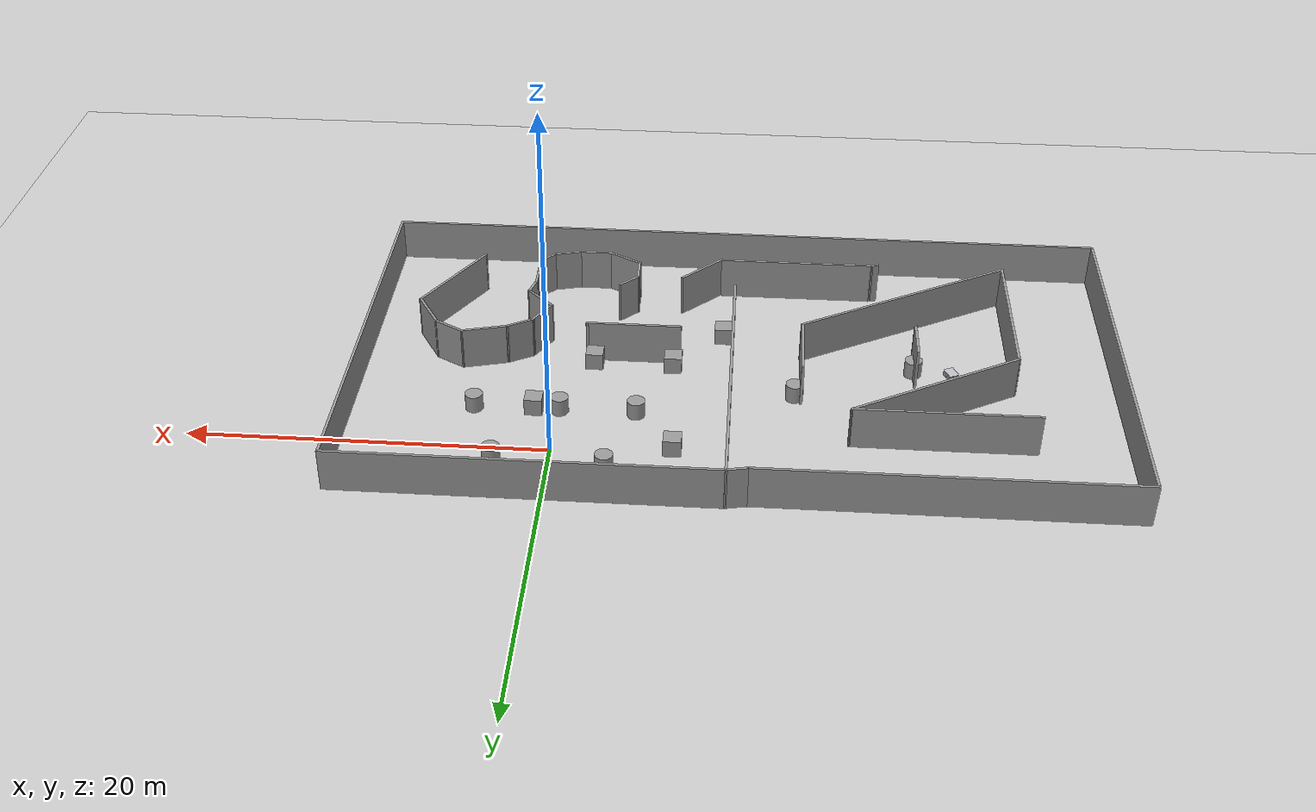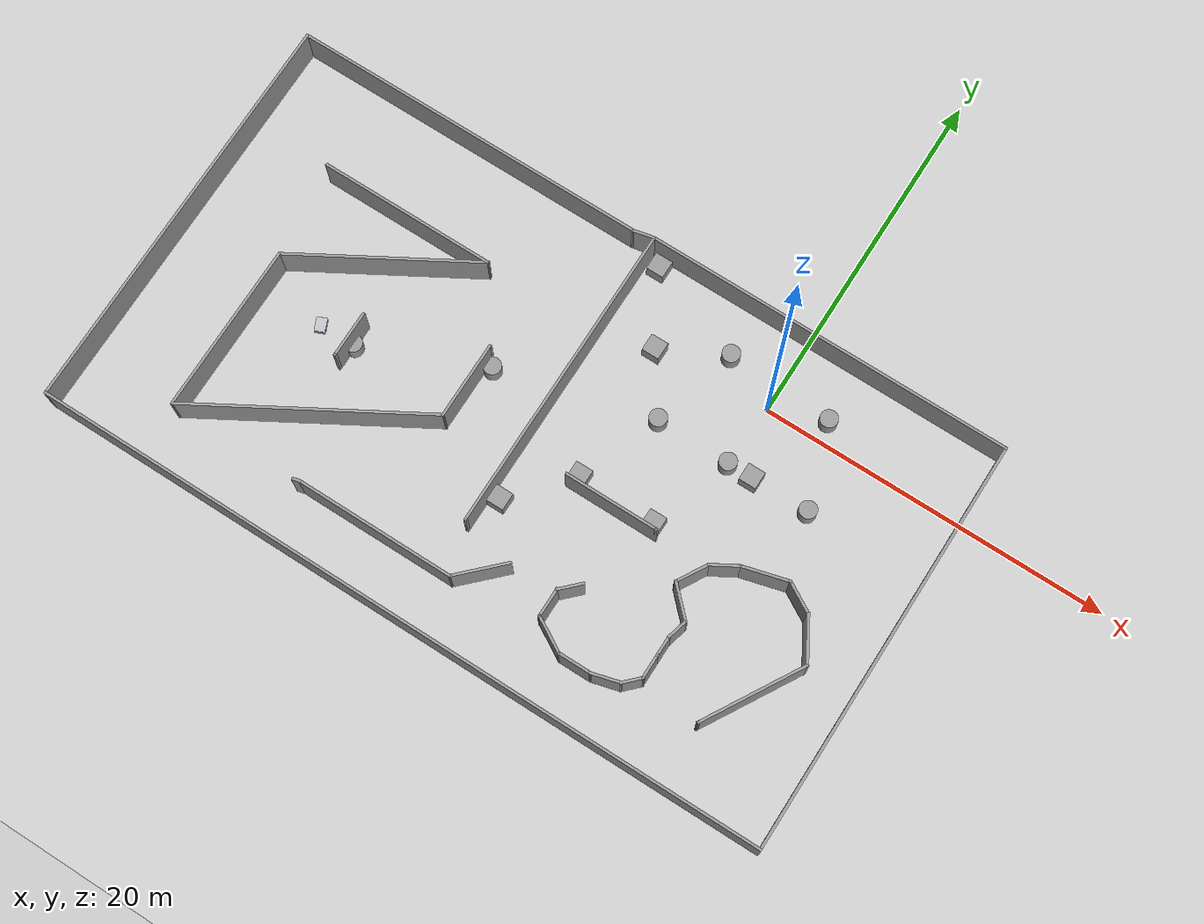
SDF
<sdf version="1.7">
 <world name="default">
  <light name="sun" type="directional">
   <pose>0 0 10 0 -0 0</pose>
   <diffuse>0.8 0.8 0.8 1</diffuse>
   <specular>0.2 0.2 0.2 1</specular>
   <attenuation>
    <range>1000</range>
    <constant>0.9</constant>
    <linear>0.01</linear>
    <quadratic>0.001</quadratic>
   </attenuation>
   <direction>-0.5 0.1 -0.9</direction>
   <spot><inner_angle>0</inner_angle><outer_angle>0</outer_angle><falloff>0</falloff></spot>
  </light>
  <model name="ground_plane">
   <static>1</static>
   <link name="link">
    <collision name="collision">
     <geometry><plane><normal>0 0 1</normal><size>100 100</size></plane></geometry>
     <surface><friction><ode><mu>100</mu><mu2>50</mu2></ode></friction></surface>
    </collision>
    <visual name="visual">
     <cast_shadows>0</cast_shadows>
     <geometry><plane><normal>0 0 1</normal><size>100 100</size></plane></geometry>
     <material>
      <script><uri>file://media/materials/scripts/gazebo.material</uri><name>Gazebo/Grey</name></script>
     </material>
    </visual>
   </link>
  </model>
  <gravity>0 0 -9.8</gravity>
  <magnetic_field>6e-06 2.3e-05 -4.2e-05</magnetic_field>
  <atmosphere type="adiabatic"/>
  <physics type="ode">
   <max_step_size>0.001</max_step_size>
   <real_time_factor>1</real_time_factor>
   <real_time_update_rate>1000</real_time_update_rate>
  </physics>
  <scene><ambient>0.4 0.4 0.4 1</ambient><background>0.7 0.7 0.7 1</background><shadows>1</shadows></scene>
  <audio><device>default</device></audio>
  <spherical_coordinates>
   <surface_model>EARTH_WGS84</surface_model>
   <latitude_deg>0</latitude_deg>
   <longitude_deg>0</longitude_deg>
   <elevation>0</elevation>
   <heading_deg>0</heading_deg>
  </spherical_coordinates>
  <light name="user_directional_light_0" type="directional">
   <pose>2.19345 2.7816 1 0 -0 0</pose>
   <diffuse>0.5 0.5 0.5 1</diffuse>
   <specular>0.1 0.1 0.1 1</specular>
   <direction>0.1 0.1 -0.9</direction>
   <attenuation>
    <range>20</range>
    <constant>0.5</constant>
    <linear>0.01</linear>
    <quadratic>0.001</quadratic>
   </attenuation>
   <spot><inner_angle>0</inner_angle><outer_angle>0</outer_angle><falloff>0</falloff></spot>
  </light>
  <light name="user_point_light_0" type="point">
   <pose>0.00602 0.042738 1 0 -0 0</pose>
   <diffuse>0.5 0.5 0.5 1</diffuse>
   <specular>0.1 0.1 0.1 1</specular>
   <attenuation>
    <range>20</range>
    <constant>0.5</constant>
    <linear>0.01</linear>
    <quadratic>0.001</quadratic>
   </attenuation>
   <cast_shadows>0</cast_shadows>
   <direction>0 0 -1</direction>
   <spot><inner_angle>0</inner_angle><outer_angle>0</outer_angle><falloff>0</falloff></spot>
  </light>
  <light name="user_directional_light_1" type="directional">
   <pose>8.20427 3.3882 1 0 -0 0</pose>
   <diffuse>0.5 0.5 0.5 1</diffuse>
   <specular>0.1 0.1 0.1 1</specular>
   <direction>0.1 0.1 -0.9</direction>
   <attenuation>
    <range>20</range>
    <constant>0.5</constant>
    <linear>0.01</linear>
    <quadratic>0.001</quadratic>
   </attenuation>
   <spot><inner_angle>0</inner_angle><outer_angle>0</outer_angle><falloff>0</falloff></spot>
  </light>
  <light name="user_directional_light_2" type="directional">
   <pose>-4.44235 2.83674 1 0 -0 0</pose>
   <diffuse>0.5 0.5 0.5 1</diffuse>
   <specular>0.1 0.1 0.1 1</specular>
   <direction>0.1 0.1 -0.9</direction>
   <attenuation>
    <range>20</range>
    <constant>0.5</constant>
    <linear>0.01</linear>
    <quadratic>0.001</quadratic>
   </attenuation>
   <spot><inner_angle>0</inner_angle><outer_angle>0</outer_angle><falloff>0</falloff></spot>
  </light>
  <light name="user_directional_light_3" type="directional">
   <pose>2.24863 -3.56007 1 0 -0 0</pose>
   <diffuse>0.5 0.5 0.5 1</diffuse>
   <specular>0.1 0.1 0.1 1</specular>
   <direction>0.1 0.1 -0.9</direction>
   <attenuation>
    <range>20</range>
    <constant>0.5</constant>
    <linear>0.01</linear>
    <quadratic>0.001</quadratic>
   </attenuation>
   <spot><inner_angle>0</inner_angle><outer_angle>0</outer_angle><falloff>0</falloff></spot>
  </light>
  <light name="user_directional_light_4" type="directional">
   <pose>2.43241 9.1233 1 0 -0 0</pose>
   <diffuse>0.5 0.5 0.5 1</diffuse>
   <specular>0.1 0.1 0.1 1</specular>
   <direction>0.1 0.1 -0.9</direction>
   <attenuation>
    <range>20</range>
    <constant>0.5</constant>
    <linear>0.01</linear>
    <quadratic>0.001</quadratic>
   </attenuation>
   <spot><inner_angle>0</inner_angle><outer_angle>0</outer_angle><falloff>0</falloff></spot>
  </light>
  <model name="Untitled">
   <pose>-9.90594 -7.76724 0 0 -0 0</pose>
   <link name="Wall_1">
    <collision name="Wall_1_Collision">
     <geometry><box><size>21.25 0.15 2.5</size></box></geometry>
     <pose>0 0 1.25 0 -0 0</pose>
    </collision>
    <visual name="Wall_1_Visual">
     <pose>0 0 1.25 0 -0 0</pose>
     <geometry><box><size>21.25 0.15 2.5</size></box></geometry>
     <material>
      <script><uri>file://media/materials/scripts/gazebo.material</uri><name>Gazebo/Grey</name></script>
      <ambient>1 1 1 1</ambient>
     </material>
     <meta><layer>0</layer></meta>
    </visual>
    <pose>10.875 11.9179 0 0 -0 0</pose>
   </link>
   <link name="Wall_11">
    <collision name="Wall_11_Collision">
     <geometry><box><size>10.25 0.15 2.5</size></box></geometry>
     <pose>0 0 1.25 0 -0 0</pose>
    </collision>
    <visual name="Wall_11_Visual">
     <pose>0 0 1.25 0 -0 0</pose>
     <geometry><box><size>10.25 0.15 2.5</size></box></geometry>
     <material>
      <script><uri>file://media/materials/scripts/gazebo.material</uri><name>Gazebo/Grey</name></script>
      <ambient>1 1 1 1</ambient>
     </material>
     <meta><layer>0</layer></meta>
    </visual>
    <pose>-11.3016 6.11885 0 0 -0 0</pose>
   </link>
   <link name="Wall_12">
    <collision name="Wall_12_Collision">
     <geometry><box><size>11 0.15 2.5</size></box></geometry>
     <pose>0 0 1.25 0 -0 0</pose>
    </collision>
    <visual name="Wall_12_Visual">
     <pose>0 0 1.25 0 -0 0</pose>
     <geometry><box><size>11 0.15 2.5</size></box></geometry>
     <material>
      <script><uri>file://media/materials/scripts/gazebo.material</uri><name>Gazebo/Grey</name></script>
      <ambient>1 1 1 1</ambient>
     </material>
     <meta><layer>0</layer></meta>
    </visual>
    <pose>-10.9498 3.40634 0 0 -0 -2.61799</pose>
   </link>
   <link name="Wall_13">
    <collision name="Wall_13_Collision">
     <geometry><box><size>9.75 0.15 2.5</size></box></geometry>
     <pose>0 0 1.25 0 -0 0</pose>
    </collision>
    <visual name="Wall_13_Visual">
     <pose>0 0 1.25 0 -0 0</pose>
     <geometry><box><size>9.75 0.15 2.5</size></box></geometry>
     <material>
      <script><uri>file://media/materials/scripts/gazebo.material</uri><name>Gazebo/Grey</name></script>
      <ambient>1 1 1 1</ambient>
     </material>
     <meta><layer>0</layer></meta>
    </visual>
    <pose>-15.6479 -4.10616 0 0 -0 -1.5708</pose>
   </link>
   <link name="Wall_14">
    <collision name="Wall_14_Collision">
     <geometry><box><size>14 0.15 2.5</size></box></geometry>
     <pose>0 0 1.25 0 -0 0</pose>
    </collision>
    <visual name="Wall_14_Visual">
     <pose>0 0 1.25 0 -0 0</pose>
     <geometry><box><size>14 0.15 2.5</size></box></geometry>
     <material>
      <script><uri>file://media/materials/scripts/gazebo.material</uri><name>Gazebo/Grey</name></script>
      <ambient>1 1 1 1</ambient>
     </material>
     <meta><layer>0</layer></meta>
    </visual>
    <pose>-9.65072 -5.44365 0 0 -0 0.523599</pose>
   </link>
   <link name="Wall_15">
    <collision name="Wall_15_Collision">
     <geometry><box><size>4.5 0.15 2.5</size></box></geometry>
     <pose>0 0 1.25 0 -0 0</pose>
    </collision>
    <visual name="Wall_15_Visual">
     <pose>0 0 1.25 0 -0 0</pose>
     <geometry><box><size>4.5 0.15 2.5</size></box></geometry>
     <material>
      <script><uri>file://media/materials/scripts/gazebo.material</uri><name>Gazebo/Grey</name></script>
      <ambient>1 1 1 1</ambient>
     </material>
     <meta><layer>0</layer></meta>
    </visual>
    <pose>-3.65349 0.193846 0 0 -0 1.5708</pose>
   </link>
   <link name="Wall_16">
    <collision name="Wall_16_Collision">
     <geometry><box><size>0.16 0.15 2.5</size></box></geometry>
     <pose>0 0 1.25 0 -0 0</pose>
    </collision>
    <visual name="Wall_16_Visual">
     <pose>0 0 1.25 0 -0 0</pose>
     <geometry><box><size>0.16 0.15 2.5</size></box></geometry>
     <material>
      <script><uri>file://media/materials/scripts/gazebo.material</uri><name>Gazebo/Grey</name></script>
      <ambient>1 1 1 1</ambient>
     </material>
     <meta><layer>0</layer></meta>
    </visual>
    <pose>-3.64849 2.36885 0 0 -0 0</pose>
   </link>
   <link name="Wall_18">
    <collision name="Wall_18_Collision">
     <geometry><box><size>2.75 0.15 2.5</size></box></geometry>
     <pose>0 0 1.25 0 -0 0</pose>
    </collision>
    <visual name="Wall_18_Visual">
     <pose>0 0 1.25 0 -0 0</pose>
     <geometry><box><size>2.75 0.15 2.5</size></box></geometry>
     <material>
      <script><uri>file://media/materials/scripts/gazebo.material</uri><name>Gazebo/Grey</name></script>
      <ambient>1 1 1 1</ambient>
     </material>
     <meta><layer>0</layer></meta>
    </visual>
    <pose>-10.11 -0.992237 0 0 -0 -1.5708</pose>
   </link>
   <link name="Wall_19">
    <collision name="Wall_19_Collision">
     <geometry><box><size>0.15 0.15 2.5</size></box></geometry>
     <pose>0 0 1.25 0 -0 0</pose>
    </collision>
    <visual name="Wall_19_Visual">
     <pose>0 0 1.25 0 -0 0</pose>
     <geometry><box><size>0.15 0.15 2.5</size></box></geometry>
     <material>
      <script><uri>file://media/materials/scripts/gazebo.material</uri><name>Gazebo/Grey</name></script>
      <ambient>1 1 1 1</ambient>
     </material>
     <meta><layer>0</layer></meta>
    </visual>
    <pose>-10.11 -2.29224 0 0 -0 0</pose>
   </link>
   <link name="Wall_2">
    <collision name="Wall_2_Collision">
     <geometry><box><size>24 0.15 2.5</size></box></geometry>
     <pose>0 0 1.25 0 -0 0</pose>
    </collision>
    <visual name="Wall_2_Visual">
     <pose>0 0 1.25 0 -0 0</pose>
     <geometry><box><size>24 0.15 2.5</size></box></geometry>
     <material>
      <script><uri>file://media/materials/scripts/gazebo.material</uri><name>Gazebo/Grey</name></script>
      <ambient>1 1 1 1</ambient>
     </material>
     <meta><layer>0</layer></meta>
    </visual>
    <pose>21.425 -0.007109 0 0 -0 -1.5708</pose>
   </link>
   <link name="Wall_21">
    <collision name="Wall_21_Collision">
     <geometry><box><size>1.5 0.15 2.5</size></box></geometry>
     <pose>0 0 1.25 0 -0 0</pose>
    </collision>
    <visual name="Wall_21_Visual">
     <pose>0 0 1.25 0 -0 0</pose>
     <geometry><box><size>1.5 0.15 2.5</size></box></geometry>
     <material>
      <script><uri>file://media/materials/scripts/gazebo.material</uri><name>Gazebo/Grey</name></script>
      <ambient>1 1 1 1</ambient>
     </material>
     <meta><layer>0</layer></meta>
    </visual>
    <pose>6.63069 -5.98062 0 0 -0 -2.35619</pose>
   </link>
   <link name="Wall_22">
    <collision name="Wall_22_Collision">
     <geometry><box><size>1.75 0.15 2.5</size></box></geometry>
     <pose>0 0 1.25 0 -0 0</pose>
    </collision>
    <visual name="Wall_22_Visual">
     <pose>0 0 1.25 0 -0 0</pose>
     <geometry><box><size>1.75 0.15 2.5</size></box></geometry>
     <material>
      <script><uri>file://media/materials/scripts/gazebo.material</uri><name>Gazebo/Grey</name></script>
      <ambient>1 1 1 1</ambient>
     </material>
     <meta><layer>0</layer></meta>
    </visual>
    <pose>6.15339 -7.25791 0 0 -0 -1.5708</pose>
   </link>
   <link name="Wall_23">
    <collision name="Wall_23_Collision">
     <geometry><box><size>2.25 0.15 2.5</size></box></geometry>
     <pose>0 0 1.25 0 -0 0</pose>
    </collision>
    <visual name="Wall_23_Visual">
     <pose>0 0 1.25 0 -0 0</pose>
     <geometry><box><size>2.25 0.15 2.5</size></box></geometry>
     <material>
      <script><uri>file://media/materials/scripts/gazebo.material</uri><name>Gazebo/Grey</name></script>
      <ambient>1 1 1 1</ambient>
     </material>
     <meta><layer>0</layer></meta>
    </visual>
    <pose>7.06272 -8.58291 0 0 -0 -0.523599</pose>
   </link>
   <link name="Wall_24">
    <collision name="Wall_24_Collision">
     <geometry><box><size>2 0.15 2.5</size></box></geometry>
     <pose>0 0 1.25 0 -0 0</pose>
    </collision>
    <visual name="Wall_24_Visual">
     <pose>0 0 1.25 0 -0 0</pose>
     <geometry><box><size>2 0.15 2.5</size></box></geometry>
     <material>
      <script><uri>file://media/materials/scripts/gazebo.material</uri><name>Gazebo/Grey</name></script>
      <ambient>1 1 1 1</ambient>
     </material>
     <meta><layer>0</layer></meta>
    </visual>
    <pose>8.89705 -9.10791 0 0 -0 0</pose>
   </link>
   <link name="Wall_25">
    <collision name="Wall_25_Collision">
     <geometry><box><size>1.75 0.15 2.5</size></box></geometry>
     <pose>0 0 1.25 0 -0 0</pose>
    </collision>
    <visual name="Wall_25_Visual">
     <pose>0 0 1.25 0 -0 0</pose>
     <geometry><box><size>1.75 0.15 2.5</size></box></geometry>
     <material>
      <script><uri>file://media/materials/scripts/gazebo.material</uri><name>Gazebo/Grey</name></script>
      <ambient>1 1 1 1</ambient>
     </material>
     <meta><layer>0</layer></meta>
    </visual>
    <pose>10.5948 -8.90086 0 0 -0 0.261799</pose>
   </link>
   <link name="Wall_26">
    <collision name="Wall_26_Collision">
     <geometry><box><size>1.25 0.15 2.5</size></box></geometry>
     <pose>0 0 1.25 0 -0 0</pose>
    </collision>
    <visual name="Wall_26_Visual">
     <pose>0 0 1.25 0 -0 0</pose>
     <geometry><box><size>1.25 0.15 2.5</size></box></geometry>
     <material>
      <script><uri>file://media/materials/scripts/gazebo.material</uri><name>Gazebo/Grey</name></script>
      <ambient>1 1 1 1</ambient>
     </material>
     <meta><layer>0</layer></meta>
    </visual>
    <pose>11.7564 -8.3049 0 0 -0 0.785398</pose>
   </link>
   <link name="Wall_27">
    <collision name="Wall_27_Collision">
     <geometry><box><size>1.5 0.15 2.5</size></box></geometry>
     <pose>0 0 1.25 0 -0 0</pose>
    </collision>
    <visual name="Wall_27_Visual">
     <pose>0 0 1.25 0 -0 0</pose>
     <geometry><box><size>1.5 0.15 2.5</size></box></geometry>
     <material>
      <script><uri>file://media/materials/scripts/gazebo.material</uri><name>Gazebo/Grey</name></script>
      <ambient>1 1 1 1</ambient>
     </material>
     <meta><layer>0</layer></meta>
    </visual>
    <pose>12.1453 -7.24099 0 0 -0 1.5708</pose>
   </link>
   <link name="Wall_28">
    <collision name="Wall_28_Collision">
     <geometry><box><size>1.25 0.15 2.5</size></box></geometry>
     <pose>0 0 1.25 0 -0 0</pose>
    </collision>
    <visual name="Wall_28_Visual">
     <pose>0 0 1.25 0 -0 0</pose>
     <geometry><box><size>1.25 0.15 2.5</size></box></geometry>
     <material>
      <script><uri>file://media/materials/scripts/gazebo.material</uri><name>Gazebo/Grey</name></script>
      <ambient>1 1 1 1</ambient>
     </material>
     <meta><layer>0</layer></meta>
    </visual>
    <pose>12.1453 -6.01599 0 0 -0 1.5708</pose>
   </link>
   <link name="Wall_29">
    <collision name="Wall_29_Collision">
     <geometry><box><size>1.25 0.15 2.5</size></box></geometry>
     <pose>0 0 1.25 0 -0 0</pose>
    </collision>
    <visual name="Wall_29_Visual">
     <pose>0 0 1.25 0 -0 0</pose>
     <geometry><box><size>1.25 0.15 2.5</size></box></geometry>
     <material>
      <script><uri>file://media/materials/scripts/gazebo.material</uri><name>Gazebo/Grey</name></script>
      <ambient>1 1 1 1</ambient>
     </material>
     <meta><layer>0</layer></meta>
    </visual>
    <pose>12.2877 -4.93473 0 0 -0 1.309</pose>
   </link>
   <link name="Wall_3">
    <collision name="Wall_3_Collision">
     <geometry><box><size>43 0.15 2.5</size></box></geometry>
     <pose>0 0 1.25 0 -0 0</pose>
    </collision>
    <visual name="Wall_3_Visual">
     <pose>0 0 1.25 0 -0 0</pose>
     <geometry><box><size>43 0.15 2.5</size></box></geometry>
     <material>
      <script><uri>file://media/materials/scripts/gazebo.material</uri><name>Gazebo/Grey</name></script>
      <ambient>1 1 1 1</ambient>
     </material>
     <meta><layer>0</layer></meta>
    </visual>
    <pose>-0 -11.9321 0 0 -0 3.14159</pose>
   </link>
   <link name="Wall_30">
    <collision name="Wall_30_Collision">
     <geometry><box><size>2.25 0.15 2.5</size></box></geometry>
     <pose>0 0 1.25 0 -0 0</pose>
    </collision>
    <visual name="Wall_30_Visual">
     <pose>0 0 1.25 0 -0 0</pose>
     <geometry><box><size>2.25 0.15 2.5</size></box></geometry>
     <material>
      <script><uri>file://media/materials/scripts/gazebo.material</uri><name>Gazebo/Grey</name></script>
      <ambient>1 1 1 1</ambient>
     </material>
     <meta><layer>0</layer></meta>
    </visual>
    <pose>11.6876 -3.661 0 0 -0 2.35619</pose>
   </link>
   <link name="Wall_31">
    <collision name="Wall_31_Collision">
     <geometry><box><size>2 0.15 2.5</size></box></geometry>
     <pose>0 0 1.25 0 -0 0</pose>
    </collision>
    <visual name="Wall_31_Visual">
     <pose>0 0 1.25 0 -0 0</pose>
     <geometry><box><size>2 0.15 2.5</size></box></geometry>
     <material>
      <script><uri>file://media/materials/scripts/gazebo.material</uri><name>Gazebo/Grey</name></script>
      <ambient>1 1 1 1</ambient>
     </material>
     <meta><layer>0</layer></meta>
    </visual>
    <pose>11.4076 -2.11747 0 0 -0 1.0472</pose>
   </link>
   <link name="Wall_32">
    <collision name="Wall_32_Collision">
     <geometry><box><size>1.75 0.15 2.5</size></box></geometry>
     <pose>0 0 1.25 0 -0 0</pose>
    </collision>
    <visual name="Wall_32_Visual">
     <pose>0 0 1.25 0 -0 0</pose>
     <geometry><box><size>1.75 0.15 2.5</size></box></geometry>
     <material>
      <script><uri>file://media/materials/scripts/gazebo.material</uri><name>Gazebo/Grey</name></script>
      <ambient>1 1 1 1</ambient>
     </material>
     <meta><layer>0</layer></meta>
    </visual>
    <pose>12.5629 -0.916396 0 0 -0 0.523599</pose>
   </link>
   <link name="Wall_33">
    <collision name="Wall_33_Collision">
     <geometry><box><size>2.75 0.15 2.5</size></box></geometry>
     <pose>0 0 1.25 0 -0 0</pose>
    </collision>
    <visual name="Wall_33_Visual">
     <pose>0 0 1.25 0 -0 0</pose>
     <geometry><box><size>2.75 0.15 2.5</size></box></geometry>
     <material>
      <script><uri>file://media/materials/scripts/gazebo.material</uri><name>Gazebo/Grey</name></script>
      <ambient>1 1 1 1</ambient>
     </material>
     <meta><layer>0</layer></meta>
    </visual>
    <pose>14.5115 -0.179932 0 0 -0 0.261799</pose>
   </link>
   <link name="Wall_34">
    <collision name="Wall_34_Collision">
     <geometry><box><size>2 0.15 2.5</size></box></geometry>
     <pose>0 0 1.25 0 -0 0</pose>
    </collision>
    <visual name="Wall_34_Visual">
     <pose>0 0 1.25 0 -0 0</pose>
     <geometry><box><size>2 0.15 2.5</size></box></geometry>
     <material>
      <script><uri>file://media/materials/scripts/gazebo.material</uri><name>Gazebo/Grey</name></script>
      <ambient>1 1 1 1</ambient>
     </material>
     <meta><layer>0</layer></meta>
    </visual>
    <pose>16.5682 -0.305967 0 0 -0 -0.523599</pose>
   </link>
   <link name="Wall_35">
    <collision name="Wall_35_Collision">
     <geometry><box><size>2.75 0.15 2.5</size></box></geometry>
     <pose>0 0 1.25 0 -0 0</pose>
    </collision>
    <visual name="Wall_35_Visual">
     <pose>0 0 1.25 0 -0 0</pose>
     <geometry><box><size>2.75 0.15 2.5</size></box></geometry>
     <material>
      <script><uri>file://media/materials/scripts/gazebo.material</uri><name>Gazebo/Grey</name></script>
      <ambient>1 1 1 1</ambient>
     </material>
     <meta><layer>0</layer></meta>
    </visual>
    <pose>18.0193 -1.8943 0 0 -0 -1.0472</pose>
   </link>
   <link name="Wall_36">
    <collision name="Wall_36_Collision">
     <geometry><box><size>6.25 0.15 2.5</size></box></geometry>
     <pose>0 0 1.25 0 -0 0</pose>
    </collision>
    <visual name="Wall_36_Visual">
     <pose>0 0 1.25 0 -0 0</pose>
     <geometry><box><size>6.25 0.15 2.5</size></box></geometry>
     <material>
      <script><uri>file://media/materials/scripts/gazebo.material</uri><name>Gazebo/Grey</name></script>
      <ambient>1 1 1 1</ambient>
     </material>
     <meta><layer>0</layer></meta>
    </visual>
    <pose>17.1443 -5.66151 0 0 -0 -2.0944</pose>
   </link>
   <link name="Wall_37">
    <collision name="Wall_37_Collision">
     <geometry><box><size>0.16 0.15 2.5</size></box></geometry>
     <pose>0 0 1.25 0 -0 0</pose>
    </collision>
    <visual name="Wall_37_Visual">
     <pose>0 0 1.25 0 -0 0</pose>
     <geometry><box><size>0.16 0.15 2.5</size></box></geometry>
     <material>
      <script><uri>file://media/materials/scripts/gazebo.material</uri><name>Gazebo/Grey</name></script>
      <ambient>1 1 1 1</ambient>
     </material>
     <meta><layer>0</layer></meta>
    </visual>
    <pose>15.6243 -8.30289 0 0 -0 0</pose>
   </link>
   <link name="Wall_39">
    <collision name="Wall_39_Collision">
     <geometry><box><size>5.5 0.15 2.5</size></box></geometry>
     <pose>0 0 1.25 0 -0 0</pose>
    </collision>
    <visual name="Wall_39_Visual">
     <pose>0 0 1.25 0 -0 0</pose>
     <geometry><box><size>5.5 0.15 2.5</size></box></geometry>
     <material>
      <script><uri>file://media/materials/scripts/gazebo.material</uri><name>Gazebo/Grey</name></script>
      <ambient>1 1 1 1</ambient>
     </material>
     <meta><layer>0</layer></meta>
    </visual>
    <pose>6.01655 -1.19881 0 0 -0 0</pose>
   </link>
   <link name="Wall_4">
    <collision name="Wall_4_Collision">
     <geometry><box><size>23.75 0.15 2.5</size></box></geometry>
     <pose>0 0 1.25 0 -0 0</pose>
    </collision>
    <visual name="Wall_4_Visual">
     <pose>0 0 1.25 0 -0 0</pose>
     <geometry><box><size>23.75 0.15 2.5</size></box></geometry>
     <material>
      <script><uri>file://media/materials/scripts/gazebo.material</uri><name>Gazebo/Grey</name></script>
      <ambient>1 1 1 1</ambient>
     </material>
     <meta><layer>0</layer></meta>
    </visual>
    <pose>-21.425 -0.132109 0 0 -0 1.5708</pose>
   </link>
   <link name="Wall_40">
    <collision name="Wall_40_Collision">
     <geometry><box><size>0.15 0.15 2.5</size></box></geometry>
     <pose>0 0 1.25 0 -0 0</pose>
    </collision>
    <visual name="Wall_40_Visual">
     <pose>0 0 1.25 0 -0 0</pose>
     <geometry><box><size>0.15 0.15 2.5</size></box></geometry>
     <material>
      <script><uri>file://media/materials/scripts/gazebo.material</uri><name>Gazebo/Grey</name></script>
      <ambient>1 1 1 1</ambient>
     </material>
     <meta><layer>0</layer></meta>
    </visual>
    <pose>8.69155 -1.19881 0 0 -0 0</pose>
   </link>
   <link name="Wall_42">
    <collision name="Wall_42_Collision">
     <geometry><box><size>3.25 0.15 2.5</size></box></geometry>
     <pose>0 0 1.25 0 -0 0</pose>
    </collision>
    <visual name="Wall_42_Visual">
     <pose>0 0 1.25 0 -0 0</pose>
     <geometry><box><size>3.25 0.15 2.5</size></box></geometry>
     <material>
      <script><uri>file://media/materials/scripts/gazebo.material</uri><name>Gazebo/Grey</name></script>
      <ambient>1 1 1 1</ambient>
     </material>
     <meta><layer>0</layer></meta>
    </visual>
    <pose>2.35314 -7.67546 0 0 -0 -2.35619</pose>
   </link>
   <link name="Wall_43">
    <collision name="Wall_43_Collision">
     <geometry><box><size>9.25 0.15 2.5</size></box></geometry>
     <pose>0 0 1.25 0 -0 0</pose>
    </collision>
    <visual name="Wall_43_Visual">
     <pose>0 0 1.25 0 -0 0</pose>
     <geometry><box><size>9.25 0.15 2.5</size></box></geometry>
     <material>
      <script><uri>file://media/materials/scripts/gazebo.material</uri><name>Gazebo/Grey</name></script>
      <ambient>1 1 1 1</ambient>
     </material>
     <meta><layer>0</layer></meta>
    </visual>
    <pose>-3.29287 -8.77148 0 0 -0 3.14159</pose>
   </link>
   <link name="Wall_44">
    <collision name="Wall_44_Collision">
     <geometry><box><size>0.5 0.15 2.5</size></box></geometry>
     <pose>0 0 1.25 0 -0 0</pose>
    </collision>
    <visual name="Wall_44_Visual">
     <pose>0 0 1.25 0 -0 0</pose>
     <geometry><box><size>0.5 0.15 2.5</size></box></geometry>
     <material>
      <script><uri>file://media/materials/scripts/gazebo.material</uri><name>Gazebo/Grey</name></script>
      <ambient>1 1 1 1</ambient>
     </material>
     <meta><layer>0</layer></meta>
    </visual>
    <pose>-8.01191 -8.81677 0 0 -0 -2.87979</pose>
   </link>
   <link name="Wall_5">
    <collision name="Wall_5_Collision">
     <geometry><box><size>20.75 0.15 2.5</size></box></geometry>
     <pose>0 0 1.25 0 -0 0</pose>
    </collision>
    <visual name="Wall_5_Visual">
     <pose>0 0 1.25 0 -0 0</pose>
     <geometry><box><size>20.75 0.15 2.5</size></box></geometry>
     <material>
      <script><uri>file://media/materials/scripts/gazebo.material</uri><name>Gazebo/Grey</name></script>
      <ambient>1 1 1 1</ambient>
     </material>
     <meta><layer>0</layer></meta>
    </visual>
    <pose>-11.125 11.6679 0 0 -0 0</pose>
   </link>
   <link name="Wall_6">
    <collision name="Wall_6_Collision">
     <geometry><box><size>1.32686 0.15 2.5</size></box></geometry>
     <pose>0 0 1.25 0 -0 0</pose>
    </collision>
    <visual name="Wall_6_Visual">
     <pose>0 0 1.25 0 -0 0</pose>
     <geometry><box><size>1.32686 0.15 2.5</size></box></geometry>
     <material>
      <script><uri>file://media/materials/scripts/gazebo.material</uri><name>Gazebo/Grey</name></script>
      <ambient>1 1 1 1</ambient>
     </material>
     <meta><layer>0</layer></meta>
    </visual>
    <pose>-0.25 11.7929 0 0 -0 0.214061</pose>
   </link>
   <link name="Wall_7">
    <collision name="Wall_7_Collision">
     <geometry><box><size>18 0.15 2.5</size></box></geometry>
     <pose>0 0 1.25 0 -0 0</pose>
    </collision>
    <visual name="Wall_7_Visual">
     <pose>0 0 1.25 0 -0 0</pose>
     <geometry><box><size>18 0.15 2.5</size></box></geometry>
     <material>
      <script><uri>file://media/materials/scripts/gazebo.material</uri><name>Gazebo/Grey</name></script>
      <ambient>1 1 1 1</ambient>
     </material>
     <meta><layer>0</layer></meta>
    </visual>
    <pose>0.324999 2.99289 0 0 -0 -1.5708</pose>
   </link>
   <link name="Wall_8">
    <collision name="Wall_8_Collision">
     <geometry><box><size>0.16 0.15 2.5</size></box></geometry>
     <pose>0 0 1.25 0 -0 0</pose>
    </collision>
    <visual name="Wall_8_Visual">
     <pose>0 0 1.25 0 -0 0</pose>
     <geometry><box><size>0.16 0.15 2.5</size></box></geometry>
     <material>
      <script><uri>file://media/materials/scripts/gazebo.material</uri><name>Gazebo/Grey</name></script>
      <ambient>1 1 1 1</ambient>
     </material>
     <meta><layer>0</layer></meta>
    </visual>
    <pose>0.329999 -5.93211 0 0 -0 0</pose>
   </link>
   <static>1</static>
  </model>
  <model name="amr_big_two">
   <link name="base_link">
    <inertial>
     <pose>0.0019 0.018907 0.00225 0 -0 0</pose>
     <mass>156.067</mass>
     <inertia>
      <ixx>4.60434</ixx>
      <ixy>0.13323</ixy>
      <ixz>-0.0293224</ixz>
      <iyy>8.86825</iyy>
      <iyz>-9.97191e-08</iyz>
      <izz>11.535</izz>
     </inertia>
    </inertial>
    <collision name="base_link_collision">
     <geometry>
      <mesh>
       <scale>0.001 0.001 0.001</scale>
       <uri>file:///home/santosh/amr_new_ws/install/amr_big_two_description/share/amr_big_two_description/meshes/base_link.stl</uri>
      </mesh>
     </geometry>
     <surface><friction><ode><mu>0.2</mu><mu2>0.2</mu2></ode></friction></surface>
    </collision>
    <collision name="base_link_fixed_joint_lump__part7_v1_1_collision_1">
     <geometry>
      <mesh>
       <scale>0.001 0.001 0.001</scale>
       <uri>file:///home/santosh/amr_new_ws/install/amr_big_two_description/share/amr_big_two_description/meshes/part7_v1_1.stl</uri>
      </mesh>
     </geometry>
     <surface><friction><ode><mu>0.2</mu><mu2>0.2</mu2></ode></friction></surface>
    </collision>
    <collision name="base_link_fixed_joint_lump__part7_v1__1__1_collision_2">
     <geometry>
      <mesh>
       <scale>0.001 0.001 0.001</scale>
       <uri>file:///home/santosh/amr_new_ws/install/amr_big_two_description/share/amr_big_two_description/meshes/part7_v1__1__1.stl</uri>
      </mesh>
     </geometry>
     <surface><friction><ode><mu>0.2</mu><mu2>0.2</mu2></ode></friction></surface>
    </collision>
    <collision name="base_link_fixed_joint_lump__part7_v1__3__1_collision_3">
     <geometry>
      <mesh>
       <scale>0.001 0.001 0.001</scale>
       <uri>file:///home/santosh/amr_new_ws/install/amr_big_two_description/share/amr_big_two_description/meshes/part7_v1__3__1.stl</uri>
      </mesh>
     </geometry>
     <surface><friction><ode><mu>0.2</mu><mu2>0.2</mu2></ode></friction></surface>
    </collision>
    <collision name="base_link_fixed_joint_lump__part7_v1__2__1_collision_4">
     <geometry>
      <mesh>
       <scale>0.001 0.001 0.001</scale>
       <uri>file:///home/santosh/amr_new_ws/install/amr_big_two_description/share/amr_big_two_description/meshes/part7_v1__2__1.stl</uri>
      </mesh>
     </geometry>
     <surface><friction><ode><mu>0.2</mu><mu2>0.2</mu2></ode></friction></surface>
    </collision>
    <collision name="base_link_fixed_joint_lump__part2_v2_1_collision_5">
     <geometry>
      <mesh>
       <scale>0.001 0.001 0.001</scale>
       <uri>file:///home/santosh/amr_new_ws/install/amr_big_two_description/share/amr_big_two_description/meshes/part2_v2_1.stl</uri>
      </mesh>
     </geometry>
     <surface><friction><ode><mu>0.2</mu><mu2>0.2</mu2></ode></friction></surface>
    </collision>
    <collision name="base_link_fixed_joint_lump__part3_v1_1_collision_6">
     <geometry>
      <mesh>
       <scale>0.001 0.001 0.001</scale>
       <uri>file:///home/santosh/amr_new_ws/install/amr_big_two_description/share/amr_big_two_description/meshes/part3_v1_1.stl</uri>
      </mesh>
     </geometry>
     <surface><friction><ode><mu>0.2</mu><mu2>0.2</mu2></ode></friction></surface>
    </collision>
    <collision name="base_link_fixed_joint_lump__cam_v1_1_collision_7">
     <geometry>
      <mesh>
       <scale>0.001 0.001 0.001</scale>
       <uri>file:///home/santosh/amr_new_ws/install/amr_big_two_description/share/amr_big_two_description/meshes/cam_v1_1.stl</uri>
      </mesh>
     </geometry>
     <surface><friction><ode><mu>0.2</mu><mu2>0.2</mu2></ode></friction></surface>
    </collision>
    <visual name="base_link_visual">
     <geometry>
      <mesh>
       <scale>0.001 0.001 0.001</scale>
       <uri>file:///home/santosh/amr_new_ws/install/amr_big_two_description/share/amr_big_two_description/meshes/base_link.stl</uri>
      </mesh>
     </geometry>
     <material>
      <script><name>Gazebo/Silver</name><uri>file://media/materials/scripts/gazebo.material</uri></script>
     </material>
    </visual>
    <visual name="base_link_fixed_joint_lump__part7_v1_1_visual_1">
     <geometry>
      <mesh>
       <scale>0.001 0.001 0.001</scale>
       <uri>file:///home/santosh/amr_new_ws/install/amr_big_two_description/share/amr_big_two_description/meshes/part7_v1_1.stl</uri>
      </mesh>
     </geometry>
     <material>
      <script><name>Gazebo/Silver</name><uri>file://media/materials/scripts/gazebo.material</uri></script>
     </material>
    </visual>
    <visual name="base_link_fixed_joint_lump__part7_v1__1__1_visual_2">
     <geometry>
      <mesh>
       <scale>0.001 0.001 0.001</scale>
       <uri>file:///home/santosh/amr_new_ws/install/amr_big_two_description/share/amr_big_two_description/meshes/part7_v1__1__1.stl</uri>
      </mesh>
     </geometry>
     <material>
      <script><name>Gazebo/Silver</name><uri>file://media/materials/scripts/gazebo.material</uri></script>
     </material>
    </visual>
    <visual name="base_link_fixed_joint_lump__part7_v1__3__1_visual_3">
     <geometry>
      <mesh>
       <scale>0.001 0.001 0.001</scale>
       <uri>file:///home/santosh/amr_new_ws/install/amr_big_two_description/share/amr_big_two_description/meshes/part7_v1__3__1.stl</uri>
      </mesh>
     </geometry>
     <material>
      <script><name>Gazebo/Silver</name><uri>file://media/materials/scripts/gazebo.material</uri></script>
     </material>
    </visual>
    <visual name="base_link_fixed_joint_lump__part7_v1__2__1_visual_4">
     <geometry>
      <mesh>
       <scale>0.001 0.001 0.001</scale>
       <uri>file:///home/santosh/amr_new_ws/install/amr_big_two_description/share/amr_big_two_description/meshes/part7_v1__2__1.stl</uri>
      </mesh>
     </geometry>
     <material>
      <script><name>Gazebo/Silver</name><uri>file://media/materials/scripts/gazebo.material</uri></script>
     </material>
    </visual>
    <visual name="base_link_fixed_joint_lump__part2_v2_1_visual_5">
     <geometry>
      <mesh>
       <scale>0.001 0.001 0.001</scale>
       <uri>file:///home/santosh/amr_new_ws/install/amr_big_two_description/share/amr_big_two_description/meshes/part2_v2_1.stl</uri>
      </mesh>
     </geometry>
     <material>
      <script><name>Gazebo/Silver</name><uri>file://media/materials/scripts/gazebo.material</uri></script>
     </material>
    </visual>
    <visual name="base_link_fixed_joint_lump__part3_v1_1_visual_6">
     <geometry>
      <mesh>
       <scale>0.001 0.001 0.001</scale>
       <uri>file:///home/santosh/amr_new_ws/install/amr_big_two_description/share/amr_big_two_description/meshes/part3_v1_1.stl</uri>
      </mesh>
     </geometry>
     <material>
      <script><name>Gazebo/Silver</name><uri>file://media/materials/scripts/gazebo.material</uri></script>
     </material>
    </visual>
    <visual name="base_link_fixed_joint_lump__cam_v1_1_visual_7">
     <geometry>
      <mesh>
       <scale>0.001 0.001 0.001</scale>
       <uri>file:///home/santosh/amr_new_ws/install/amr_big_two_description/share/amr_big_two_description/meshes/cam_v1_1.stl</uri>
      </mesh>
     </geometry>
     <material>
      <script><name>Gazebo/Silver</name><uri>file://media/materials/scripts/gazebo.material</uri></script>
     </material>
    </visual>
    <self_collide>1</self_collide>
    <self_collide>1</self_collide>
    <self_collide>1</self_collide>
    <self_collide>1</self_collide>
    <self_collide>1</self_collide>
    <self_collide>1</self_collide>
    <self_collide>1</self_collide>
    <self_collide>1</self_collide>
    <sensor name="lidar_2" type="ray">
     <always_on>1</always_on>
     <visualize>1</visualize>
     <update_rate>5</update_rate>
     <ray>
      <scan>
       <horizontal>
        <samples>360</samples>
        <resolution>1</resolution>
        <min_angle>-0</min_angle>
        <max_angle>4.71239</max_angle>
       </horizontal>
       <vertical><samples>1</samples><min_angle>0</min_angle><max_angle>0</max_angle></vertical>
      </scan>
      <range><min>0.12</min><max>6.5</max><resolution>0.015</resolution></range>
      <noise><type>gaussian</type><mean>0</mean><stddev>0.01</stddev></noise>
     </ray>
     <plugin name="scan_back" filename="libgazebo_ros_ray_sensor.so">
      <ros><remapping>~/out:=scan_back</remapping></ros>
      <output_type>sensor_msgs/LaserScan</output_type>
      <frame_name>back_lidar_link</frame_name>
     </plugin>
     <pose>-0.35 0.3 0.06 0 -0 0</pose>
    </sensor>
    <sensor name="lidar_1" type="ray">
     <always_on>1</always_on>
     <visualize>1</visualize>
     <update_rate>5</update_rate>
     <ray>
      <scan>
       <horizontal>
        <samples>360</samples>
        <resolution>1</resolution>
        <min_angle>-3.14159</min_angle>
        <max_angle>1.5708</max_angle>
       </horizontal>
       <vertical><samples>1</samples><min_angle>0</min_angle><max_angle>0</max_angle></vertical>
      </scan>
      <range><min>0.12</min><max>6.5</max><resolution>0.015</resolution></range>
      <noise><type>gaussian</type><mean>0</mean><stddev>0.01</stddev></noise>
     </ray>
     <plugin name="scan_front" filename="libgazebo_ros_ray_sensor.so">
      <ros><remapping>~/out:=scan_front</remapping></ros>
      <output_type>sensor_msgs/LaserScan</output_type>
      <frame_name>front_lidar_link</frame_name>
     </plugin>
     <pose>0.35 -0.25 0.06 0 -0 0</pose>
    </sensor>
    <sensor name="bmb_imu" type="imu">
     <always_on>1</always_on>
     <update_rate>100</update_rate>
     <visualize>1</visualize>
     <imu>
      <angular_velocity>
       <x><noise type="gaussian"><mean>0</mean><stddev>0.0002</stddev></noise></x>
       <y><noise type="gaussian"><mean>0</mean><stddev>0.0002</stddev></noise></y>
       <z><noise type="gaussian"><mean>0</mean><stddev>0.0002</stddev></noise></z>
      </angular_velocity>
      <linear_acceleration>
       <x><noise type="gaussian"><mean>0</mean><stddev>0.017</stddev></noise></x>
       <y><noise type="gaussian"><mean>0</mean><stddev>0.017</stddev></noise></y>
       <z><noise type="gaussian"><mean>0</mean><stddev>0.017</stddev></noise></z>
      </linear_acceleration>
      <orientation>
       <x><noise type="gaussian"><mean>0.0</mean><stddev>2e-3</stddev></noise></x>
       <y><noise type="gaussian"><mean>0.0</mean><stddev>2e-3</stddev></noise></y>
       <z><noise type="gaussian"><mean>0.0</mean><stddev>2e-3</stddev></noise></z>
      </orientation>
     </imu>
     <plugin name="basic_mobile_bot_imu" filename="libgazebo_ros_imu_sensor.so">
      <initial_orientation_as_reference>0</initial_orientation_as_reference>
      <ros><namespace>/imu</namespace><remapping>~/out:=data</remapping><frame_name>imu_link</frame_name></ros>
     </plugin>
     <pose>0 0 0.04 0 -0 0</pose>
    </sensor>
   </link>
   <joint name="Ball 1" type="revolute">
    <pose relative_to="base_link">0.325 0.018907 -0.131093 0 -0 0</pose>
    <parent>base_link</parent>
    <child>part5_v1__2__1</child>
    <axis>
     <xyz>1 0 0</xyz>
     <limit><lower>-1e+16</lower><upper>1e+16</upper></limit>
     <dynamics><spring_reference>0</spring_reference><spring_stiffness>0</spring_stiffness></dynamics>
    </axis>
   </joint>
   <link name="part5_v1__2__1">
    <pose relative_to="Ball 1">0 0 0 0 -0 0</pose>
    <inertial>
     <mass>2.40589</mass>
     <inertia>
      <ixx>0.001679</ixx>
      <ixy>0</ixy>
      <ixz>0</ixz>
      <iyy>0.001686</iyy>
      <iyz>0</iyz>
      <izz>0.001686</izz>
     </inertia>
    </inertial>
    <collision name="part5_v1__2__1_collision">
     <pose>-0.325 -0.018907 0.131093 0 -0 0</pose>
     <geometry>
      <mesh>
       <scale>0.001 0.001 0.001</scale>
       <uri>file:///home/santosh/amr_new_ws/install/amr_big_two_description/share/amr_big_two_description/meshes/part5_v1__2__1.stl</uri>
      </mesh>
     </geometry>
     <surface><friction><ode><mu>0.2</mu><mu2>0.2</mu2></ode></friction></surface>
    </collision>
    <visual name="part5_v1__2__1_visual">
     <pose>-0.325 -0.018907 0.131093 0 -0 0</pose>
     <geometry>
      <mesh>
       <scale>0.001 0.001 0.001</scale>
       <uri>file:///home/santosh/amr_new_ws/install/amr_big_two_description/share/amr_big_two_description/meshes/part5_v1__2__1.stl</uri>
      </mesh>
     </geometry>
     <material>
      <script><name>Gazebo/Silver</name><uri>file://media/materials/scripts/gazebo.material</uri></script>
     </material>
    </visual>
    <self_collide>1</self_collide>
   </link>
   <joint name="Ball 2" type="revolute">
    <pose relative_to="base_link">-0.325 0.018907 -0.131093 0 -0 0</pose>
    <parent>base_link</parent>
    <child>part5_v1__3__1</child>
    <axis>
     <xyz>1 0 0</xyz>
     <limit><lower>-1e+16</lower><upper>1e+16</upper></limit>
     <dynamics><spring_reference>0</spring_reference><spring_stiffness>0</spring_stiffness></dynamics>
    </axis>
   </joint>
   <link name="part5_v1__3__1">
    <pose relative_to="Ball 2">0 0 0 0 -0 0</pose>
    <inertial>
     <mass>2.40589</mass>
     <inertia>
      <ixx>0.001686</ixx>
      <ixy>0</ixy>
      <ixz>0</ixz>
      <iyy>0.001686</iyy>
      <iyz>0</iyz>
      <izz>0.001679</izz>
     </inertia>
    </inertial>
    <collision name="part5_v1__3__1_collision">
     <pose>0.325 -0.018907 0.131093 0 -0 0</pose>
     <geometry>
      <mesh>
       <scale>0.001 0.001 0.001</scale>
       <uri>file:///home/santosh/amr_new_ws/install/amr_big_two_description/share/amr_big_two_description/meshes/part5_v1__3__1.stl</uri>
      </mesh>
     </geometry>
     <surface><friction><ode><mu>0.2</mu><mu2>0.2</mu2></ode></friction></surface>
    </collision>
    <visual name="part5_v1__3__1_visual">
     <pose>0.325 -0.018907 0.131093 0 -0 0</pose>
     <geometry>
      <mesh>
       <scale>0.001 0.001 0.001</scale>
       <uri>file:///home/santosh/amr_new_ws/install/amr_big_two_description/share/amr_big_two_description/meshes/part5_v1__3__1.stl</uri>
      </mesh>
     </geometry>
     <material>
      <script><name>Gazebo/Silver</name><uri>file://media/materials/scripts/gazebo.material</uri></script>
     </material>
    </visual>
    <self_collide>1</self_collide>
   </link>
   <joint name="Revolute 3" type="revolute">
    <pose relative_to="base_link">0 0.218907 -0.081093 0 -0 0</pose>
    <parent>base_link</parent>
    <child>part5_v1_1</child>
    <axis>
     <xyz>0 1 0</xyz>
     <limit><lower>-1e+16</lower><upper>1e+16</upper></limit>
     <dynamics><spring_reference>0</spring_reference><spring_stiffness>0</spring_stiffness></dynamics>
    </axis>
   </joint>
   <link name="part5_v1_1">
    <pose relative_to="Revolute 3">0 0 0 0 -0 0</pose>
    <inertial>
     <pose>0 0.053082 -0 0 -0 0</pose>
     <mass>5.90503</mass>
     <inertia>
      <ixx>0.0154781</ixx>
      <ixy>2.38565e-11</ixy>
      <ixz>-9.44327e-23</ixz>
      <iyy>0.019807</iyy>
      <iyz>4.7969e-17</iyz>
      <izz>0.0154781</izz>
     </inertia>
    </inertial>
    <collision name="part5_v1_1_collision">
     <pose>0 -0.218907 0.081093 0 -0 0</pose>
     <geometry>
      <mesh>
       <scale>0.001 0.001 0.001</scale>
       <uri>file:///home/santosh/amr_new_ws/install/amr_big_two_description/share/amr_big_two_description/meshes/part5_v1_1.stl</uri>
      </mesh>
     </geometry>
     <surface><friction><ode><mu>0.2</mu><mu2>0.2</mu2></ode></friction></surface>
    </collision>
    <collision name="part5_v1_1_fixed_joint_lump__part4_v2_1_collision_1">
     <pose>0 -0.218907 0.081093 0 -0 0</pose>
     <geometry>
      <mesh>
       <scale>0.001 0.001 0.001</scale>
       <uri>file:///home/santosh/amr_new_ws/install/amr_big_two_description/share/amr_big_two_description/meshes/part4_v2_1.stl</uri>
      </mesh>
     </geometry>
     <surface><friction><ode><mu>0.2</mu><mu2>0.2</mu2></ode></friction></surface>
    </collision>
    <visual name="part5_v1_1_visual">
     <pose>0 -0.218907 0.081093 0 -0 0</pose>
     <geometry>
      <mesh>
       <scale>0.001 0.001 0.001</scale>
       <uri>file:///home/santosh/amr_new_ws/install/amr_big_two_description/share/amr_big_two_description/meshes/part5_v1_1.stl</uri>
      </mesh>
     </geometry>
     <material>
      <script><name>Gazebo/Silver</name><uri>file://media/materials/scripts/gazebo.material</uri></script>
     </material>
    </visual>
    <visual name="part5_v1_1_fixed_joint_lump__part4_v2_1_visual_1">
     <pose>0 -0.218907 0.081093 0 -0 0</pose>
     <geometry>
      <mesh>
       <scale>0.001 0.001 0.001</scale>
       <uri>file:///home/santosh/amr_new_ws/install/amr_big_two_description/share/amr_big_two_description/meshes/part4_v2_1.stl</uri>
      </mesh>
     </geometry>
     <material>
      <script><name>Gazebo/Silver</name><uri>file://media/materials/scripts/gazebo.material</uri></script>
     </material>
    </visual>
    <self_collide>1</self_collide>
    <self_collide>1</self_collide>
   </link>
   <joint name="Revolute 5" type="revolute">
    <pose relative_to="base_link">0 -0.181093 -0.081093 0 -0 0</pose>
    <parent>base_link</parent>
    <child>part5_v1__1__1</child>
    <axis>
     <xyz>0 1 0</xyz>
     <limit><lower>-1e+16</lower><upper>1e+16</upper></limit>
     <dynamics><spring_reference>0</spring_reference><spring_stiffness>0</spring_stiffness></dynamics>
    </axis>
   </joint>
   <link name="part5_v1__1__1">
    <pose relative_to="Revolute 5">0 0 0 0 -0 0</pose>
    <inertial>
     <pose>0 -0.053082 -0 0 -0 0</pose>
     <mass>5.90503</mass>
     <inertia>
      <ixx>0.0154781</ixx>
      <ixy>-2.38565e-11</ixy>
      <ixz>6.91682e-23</ixz>
      <iyy>0.019807</iyy>
      <iyz>3.51353e-17</iyz>
      <izz>0.0154781</izz>
     </inertia>
    </inertial>
    <collision name="part5_v1__1__1_collision">
     <pose>0 0.181093 0.081093 0 -0 0</pose>
     <geometry>
      <mesh>
       <scale>0.001 0.001 0.001</scale>
       <uri>file:///home/santosh/amr_new_ws/install/amr_big_two_description/share/amr_big_two_description/meshes/part5_v1__1__1.stl</uri>
      </mesh>
     </geometry>
     <surface><friction><ode><mu>0.2</mu><mu2>0.2</mu2></ode></friction></surface>
    </collision>
    <collision name="part5_v1__1__1_fixed_joint_lump__part4_v2__1__1_collision_1">
     <pose>0 0.181093 0.081093 0 -0 0</pose>
     <geometry>
      <mesh>
       <scale>0.001 0.001 0.001</scale>
       <uri>file:///home/santosh/amr_new_ws/install/amr_big_two_description/share/amr_big_two_description/meshes/part4_v2__1__1.stl</uri>
      </mesh>
     </geometry>
     <surface><friction><ode><mu>0.2</mu><mu2>0.2</mu2></ode></friction></surface>
    </collision>
    <visual name="part5_v1__1__1_visual">
     <pose>0 0.181093 0.081093 0 -0 0</pose>
     <geometry>
      <mesh>
       <scale>0.001 0.001 0.001</scale>
       <uri>file:///home/santosh/amr_new_ws/install/amr_big_two_description/share/amr_big_two_description/meshes/part5_v1__1__1.stl</uri>
      </mesh>
     </geometry>
     <material>
      <script><name>Gazebo/Silver</name><uri>file://media/materials/scripts/gazebo.material</uri></script>
     </material>
    </visual>
    <visual name="part5_v1__1__1_fixed_joint_lump__part4_v2__1__1_visual_1">
     <pose>0 0.181093 0.081093 0 -0 0</pose>
     <geometry>
      <mesh>
       <scale>0.001 0.001 0.001</scale>
       <uri>file:///home/santosh/amr_new_ws/install/amr_big_two_description/share/amr_big_two_description/meshes/part4_v2__1__1.stl</uri>
      </mesh>
     </geometry>
     <material>
      <script><name>Gazebo/Silver</name><uri>file://media/materials/scripts/gazebo.material</uri></script>
     </material>
    </visual>
    <self_collide>1</self_collide>
    <self_collide>1</self_collide>
   </link>
   <plugin name="control" filename="libgazebo_ros_control.so"/>
   <static>0</static>
   <plugin name="diff_drive" filename="libgazebo_ros_diff_drive.so">
    <left_joint>Revolute 3</left_joint>
    <right_joint>Revolute 5</right_joint>
    <wheel_separation>0.5</wheel_separation>
    <wheel_diameter>0.185</wheel_diameter>
    <max_wheel_torque>200</max_wheel_torque>
    <max_wheel_acceleration>10.0</max_wheel_acceleration>
    <odometry_frame>odom</odometry_frame>
    <robot_base_frame>base_link</robot_base_frame>
    <publish_odom>1</publish_odom>
    <publish_odom_tf>1</publish_odom_tf>
   </plugin>
   <pose>-22.1433 -8.66515 0.173564 1e-05 0.002064 1.97007</pose>
  </model>
  <model name="unit_cylinder">
   <pose>-4.42742 -3.60019 0.499998 3e-06 -3e-06 0</pose>
   <link name="link">
    <inertial>
     <mass>1</mass>
     <inertia><ixx>0.145833</ixx><ixy>0</ixy><ixz>0</ixz><iyy>0.145833</iyy><iyz>0</iyz><izz>0.125</izz></inertia>
    </inertial>
    <collision name="collision">
     <geometry><cylinder><radius>0.5</radius><length>1</length></cylinder></geometry>
    </collision>
    <visual name="visual">
     <geometry><cylinder><radius>0.5</radius><length>1</length></cylinder></geometry>
     <material>
      <script><name>Gazebo/Grey</name><uri>file://media/materials/scripts/gazebo.material</uri></script>
     </material>
    </visual>
   </link>
  </model>
  <model name="unit_cylinder_0">
   <pose>-0.159853 -3.64559 0.499993 -3e-06 3e-06 0</pose>
   <link name="link">
    <inertial>
     <mass>1</mass>
     <inertia><ixx>0.145833</ixx><ixy>0</ixy><ixz>0</ixz><iyy>0.145833</iyy><iyz>0</iyz><izz>0.125</izz></inertia>
    </inertial>
    <collision name="collision">
     <geometry><cylinder><radius>0.5</radius><length>1</length></cylinder></geometry>
    </collision>
    <visual name="visual">
     <geometry><cylinder><radius>0.5</radius><length>1</length></cylinder></geometry>
     <material>
      <script><name>Gazebo/Grey</name><uri>file://media/materials/scripts/gazebo.material</uri></script>
     </material>
    </visual>
   </link>
  </model>
  <model name="unit_cylinder_1">
   <pose>4.62791 -3.61505 0.499998 3e-06 -3e-06 0</pose>
   <link name="link">
    <inertial>
     <mass>1</mass>
     <inertia><ixx>0.145833</ixx><ixy>0</ixy><ixz>0</ixz><iyy>0.145833</iyy><iyz>0</iyz><izz>0.125</izz></inertia>
    </inertial>
    <collision name="collision">
     <geometry><cylinder><radius>0.5</radius><length>1</length></cylinder></geometry>
    </collision>
    <visual name="visual">
     <geometry><cylinder><radius>0.5</radius><length>1</length></cylinder></geometry>
     <material>
      <script><name>Gazebo/Grey</name><uri>file://media/materials/scripts/gazebo.material</uri></script>
     </material>
    </visual>
   </link>
  </model>
  <model name="unit_cylinder_2">
   <pose>3.03824 1.09523 0.499992 -3e-06 3e-06 0</pose>
   <link name="link">
    <inertial>
     <mass>1</mass>
     <inertia><ixx>0.145833</ixx><ixy>0</ixy><ixz>0</ixz><iyy>0.145833</iyy><iyz>0</iyz><izz>0.125</izz></inertia>
    </inertial>
    <collision name="collision">
     <geometry><cylinder><radius>0.5</radius><length>1</length></cylinder></geometry>
    </collision>
    <visual name="visual">
     <geometry><cylinder><radius>0.5</radius><length>1</length></cylinder></geometry>
     <material>
      <script><name>Gazebo/Grey</name><uri>file://media/materials/scripts/gazebo.material</uri></script>
     </material>
    </visual>
   </link>
  </model>
  <model name="unit_cylinder_3">
   <pose>-3.07191 1.38036 0.499998 3e-06 -3e-06 0</pose>
   <link name="link">
    <inertial>
     <mass>1</mass>
     <inertia><ixx>0.145833</ixx><ixy>0</ixy><ixz>0</ixz><iyy>0.145833</iyy><iyz>0</iyz><izz>0.125</izz></inertia>
    </inertial>
    <collision name="collision">
     <geometry><cylinder><radius>0.5</radius><length>1</length></cylinder></geometry>
    </collision>
    <visual name="visual">
     <geometry><cylinder><radius>0.5</radius><length>1</length></cylinder></geometry>
     <material>
      <script><name>Gazebo/Grey</name><uri>file://media/materials/scripts/gazebo.material</uri></script>
     </material>
    </visual>
   </link>
  </model>
  <model name="unit_box">
   <pose>-6.6113 -0.435889 0.499995 -1e-05 0 0</pose>
   <link name="link">
    <inertial>
     <mass>1</mass>
     <inertia>
      <ixx>0.166667</ixx>
      <ixy>0</ixy>
      <ixz>0</ixz>
      <iyy>0.166667</iyy>
      <iyz>0</iyz>
      <izz>0.166667</izz>
     </inertia>
    </inertial>
    <collision name="collision"><geometry><box><size>1 1 1</size></box></geometry></collision>
    <visual name="visual">
     <geometry><box><size>1 1 1</size></box></geometry>
     <material>
      <script><name>Gazebo/Grey</name><uri>file://media/materials/scripts/gazebo.material</uri></script>
     </material>
    </visual>
   </link>
  </model>
  <model name="unit_box_0">
   <pose>-1.69843 -8.38051 0.499995 0 1e-05 0</pose>
   <link name="link">
    <inertial>
     <mass>1</mass>
     <inertia>
      <ixx>0.166667</ixx>
      <ixy>0</ixy>
      <ixz>0</ixz>
      <iyy>0.166667</iyy>
      <iyz>0</iyz>
      <izz>0.166667</izz>
     </inertia>
    </inertial>
    <collision name="collision"><geometry><box><size>1 1 1</size></box></geometry></collision>
    <visual name="visual">
     <geometry><box><size>1 1 1</size></box></geometry>
     <material>
      <script><name>Gazebo/Grey</name><uri>file://media/materials/scripts/gazebo.material</uri></script>
     </material>
    </visual>
   </link>
  </model>
  <model name="unit_box_1">
   <pose>-6.22729 -8.31143 0.499995 -1e-05 0 0</pose>
   <link name="link">
    <inertial>
     <mass>1</mass>
     <inertia>
      <ixx>0.166667</ixx>
      <ixy>0</ixy>
      <ixz>0</ixz>
      <iyy>0.166667</iyy>
      <iyz>0</iyz>
      <izz>0.166667</izz>
     </inertia>
    </inertial>
    <collision name="collision"><geometry><box><size>1 1 1</size></box></geometry></collision>
    <visual name="visual">
     <geometry><box><size>1 1 1</size></box></geometry>
     <material>
      <script><name>Gazebo/Grey</name><uri>file://media/materials/scripts/gazebo.material</uri></script>
     </material>
    </visual>
   </link>
  </model>
  <model name="unit_box_2">
   <pose>-8.80803 3.48507 0.499995 0 1e-05 0</pose>
   <link name="link">
    <inertial>
     <mass>1</mass>
     <inertia>
      <ixx>0.166667</ixx>
      <ixy>0</ixy>
      <ixz>0</ixz>
      <iyy>0.166667</iyy>
      <iyz>0</iyz>
      <izz>0.166667</izz>
     </inertia>
    </inertial>
    <collision name="collision"><geometry><box><size>1 1 1</size></box></geometry></collision>
    <visual name="visual">
     <geometry><box><size>1 1 1</size></box></geometry>
     <material>
      <script><name>Gazebo/Grey</name><uri>file://media/materials/scripts/gazebo.material</uri></script>
     </material>
    </visual>
   </link>
  </model>
  <model name="unit_box_3">
   <pose>-9.00553 -11.537 0.5 -0 -0 -0.000215</pose>
   <link name="link">
    <inertial>
     <mass>1</mass>
     <inertia>
      <ixx>0.166667</ixx>
      <ixy>0</ixy>
      <ixz>0</ixz>
      <iyy>0.166667</iyy>
      <iyz>0</iyz>
      <izz>0.166667</izz>
     </inertia>
    </inertial>
    <collision name="collision"><geometry><box><size>1 1 1</size></box></geometry></collision>
    <visual name="visual">
     <geometry><box><size>1 1 1</size></box></geometry>
     <material>
      <script><name>Gazebo/Grey</name><uri>file://media/materials/scripts/gazebo.material</uri></script>
     </material>
    </visual>
   </link>
  </model>
  <model name="unit_cylinder_4">
   <pose>-19.9631 -8.7357 0.499997 3e-06 4e-06 -0</pose>
   <link name="link">
    <inertial>
     <mass>1</mass>
     <inertia><ixx>0.145833</ixx><ixy>0</ixy><ixz>0</ixz><iyy>0.145833</iyy><iyz>0</iyz><izz>0.125</izz></inertia>
    </inertial>
    <collision name="collision">
     <geometry><cylinder><radius>0.5</radius><length>1</length></cylinder></geometry>
    </collision>
    <visual name="visual">
     <geometry><cylinder><radius>0.5</radius><length>1</length></cylinder></geometry>
     <material>
      <script><name>Gazebo/Grey</name><uri>file://media/materials/scripts/gazebo.material</uri></script>
     </material>
    </visual>
   </link>
  </model>
  <model name="unit_cylinder_5">
   <pose>-13.1809 -5.8782 0.5 0 -0 0</pose>
   <link name="link">
    <inertial>
     <mass>1</mass>
     <inertia><ixx>0.145833</ixx><ixy>0</ixy><ixz>0</ixz><iyy>0.145833</iyy><iyz>0</iyz><izz>0.125</izz></inertia>
    </inertial>
    <collision name="collision">
     <geometry><cylinder><radius>0.5</radius><length>1</length></cylinder></geometry>
    </collision>
    <visual name="visual">
     <geometry><cylinder><radius>0.5</radius><length>1</length></cylinder></geometry>
     <material>
      <script><name>Gazebo/Grey</name><uri>file://media/materials/scripts/gazebo.material</uri></script>
     </material>
    </visual>
   </link>
  </model>
  <model name="unit_box_4">
   <pose>1.28096 -3.64297 0.5 0 -0 0</pose>
   <link name="link">
    <inertial>
     <mass>1</mass>
     <inertia>
      <ixx>0.166667</ixx>
      <ixy>0</ixy>
      <ixz>0</ixz>
      <iyy>0.166667</iyy>
      <iyz>0</iyz>
      <izz>0.166667</izz>
     </inertia>
    </inertial>
    <collision name="collision"><geometry><box><size>1 1 1</size></box></geometry></collision>
    <visual name="visual">
     <geometry><box><size>1 1 1</size></box></geometry>
     <material>
      <script><name>Gazebo/Grey</name><uri>file://media/materials/scripts/gazebo.material</uri></script>
     </material>
    </visual>
   </link>
  </model>
 </world>
</sdf>
